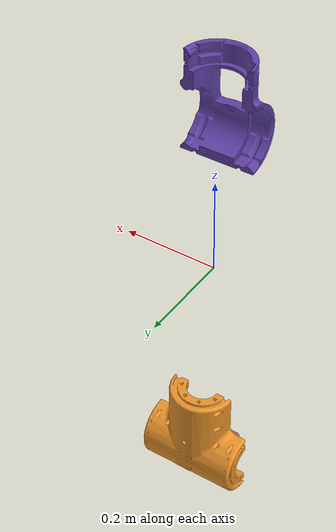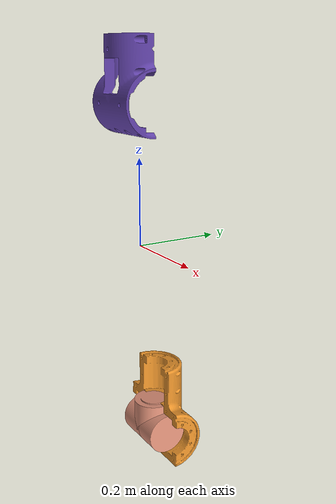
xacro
<?xml version="1.0" ?>
<robot xmlns:xacro="http://www.ros.org/wiki/xacro">

  <!-- Link urdf_base -->
  <link name="urdf_base">
    <inertial>
      <origin xyz="0.000699269 0.0334604 -0.431702" rpy="0 0 0"/>
      <mass value="5.132"/>
      <inertia ixx="0.0213139" ixy="-2.35276e-07" ixz="6.5838e-06" iyy="0.0288848" iyz="-2.88595e-05" izz="0.0155352"/>
    </inertial>
    <!-- Part stator_x8_p20_120_unified -->
    <visual>
      <origin xyz="-0.0103011 0.0333787 -0.467748" rpy="-1.5708 0.785398 1.5708"/>
      <geometry>
        <mesh filename="package://assets/stator_x8_p20_120_unified.stl"/>
      </geometry>
      <material name="stator_x8_p20_120_unified_material">
        <color rgba="0.882353 0.572549 0.478431 1"/>
      </material>
    </visual>
    <collision>
      <origin xyz="-0.0103011 0.0333787 -0.467748" rpy="-1.5708 0.785398 1.5708"/>
      <geometry>
        <mesh filename="package://assets/stator_x8_p20_120_unified.stl"/>
      </geometry>
    </collision>
    <!-- Part b_base -->
    <visual>
      <origin xyz="0.000697952 -0.00271429 -0.432504" rpy="0 -0 0"/>
      <geometry>
        <mesh filename="package://assets/b_base.stl"/>
      </geometry>
      <material name="b_base_material">
        <color rgba="0.368627 0.25098 0.643137 1"/>
      </material>
    </visual>
    <collision>
      <origin xyz="0.000697952 -0.00271429 -0.432504" rpy="0 -0 0"/>
      <geometry>
        <mesh filename="package://assets/b_base.stl"/>
      </geometry>
    </collision>
    <!-- Part stator_x8_p20_120_unified_2 -->
    <visual>
      <origin xyz="0.0116989 0.0333787 -0.467748" rpy="1.5708 -0.785398 1.5708"/>
      <geometry>
        <mesh filename="package://assets/stator_x8_p20_120_unified.stl"/>
      </geometry>
      <material name="stator_x8_p20_120_unified_2_material">
        <color rgba="0.882353 0.572549 0.478431 1"/>
      </material>
    </visual>
    <collision>
      <origin xyz="0.0116989 0.0333787 -0.467748" rpy="1.5708 -0.785398 1.5708"/>
      <geometry>
        <mesh filename="package://assets/stator_x8_p20_120_unified.stl"/>
      </geometry>
    </collision>
    <!-- Part stator_x8_p20_120_unified_3 -->
    <visual>
      <origin xyz="0.000698852 0.0333787 -0.396748" rpy="0 -0 0"/>
      <geometry>
        <mesh filename="package://assets/stator_x8_p20_120_unified.stl"/>
      </geometry>
      <material name="stator_x8_p20_120_unified_3_material">
        <color rgba="0.882353 0.572549 0.478431 1"/>
      </material>
    </visual>
    <collision>
      <origin xyz="0.000698852 0.0333787 -0.396748" rpy="0 -0 0"/>
      <geometry>
        <mesh filename="package://assets/stator_x8_p20_120_unified.stl"/>
      </geometry>
    </collision>
    <!-- Part f_base -->
    <visual>
      <origin xyz="0.000705351 0.070373 -0.431099" rpy="0 -0 0"/>
      <geometry>
        <mesh filename="package://assets/f_base.stl"/>
      </geometry>
      <material name="f_base_material">
        <color rgba="0.909804 0.572549 0.164706 1"/>
      </material>
    </visual>
    <collision>
      <origin xyz="0.000705351 0.070373 -0.431099" rpy="0 -0 0"/>
      <geometry>
        <mesh filename="package://assets/f_base.stl"/>
      </geometry>
    </collision>
  </link>

</robot>
